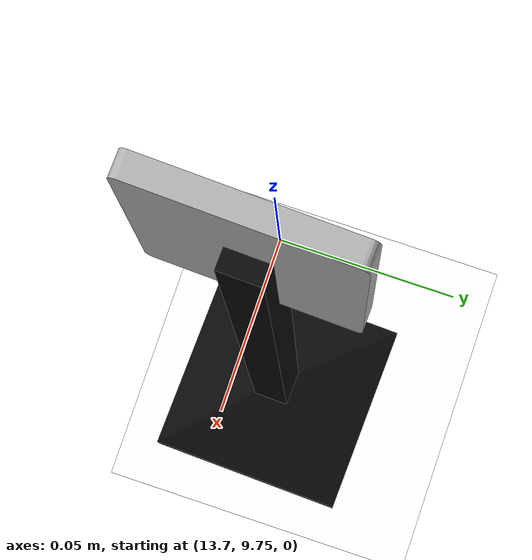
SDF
<sdf version="1.7">
 <world name="bfmc_official">
  <model name="track">
   <static>1</static>
   <link name="link">
    <collision name="collision">
     <geometry><plane><normal>0 0 1</normal><size>20.541 13.656</size></plane></geometry>
     <surface>
      <contact><collide_bitmask>65535</collide_bitmask></contact>
      <friction><ode><mu>1</mu><mu2>1</mu2></ode></friction>
     </surface>
    </collision>
    <visual name="visual">
     <geometry><plane><normal>0 0 1</normal><size>20.541 13.656</size></plane></geometry>
     <material>
      <ambient>1 1 1 1</ambient>
      <diffuse>1 1 1 1</diffuse>
      <specular>0 0 0 0</specular>
      <emissive>1 1 1 1</emissive>
      <script>
       <uri>model://track/materials/scripts</uri>
       <uri>model://track/materials/textures</uri>
       <name>BFMC_MATERIAL</name>
      </script>
     </material>
    </visual>
   </link>
   <pose>10.348 6.893 0 0 -0 0</pose>
  </model>
  <model name="LHIGH_Z_clone_clone">
   <static>1</static>
   <link name="sign_leg">
    <inertial>
     <mass>0.5</mass>
     <inertia>
      <ixx>0.166667</ixx>
      <ixy>0</ixy>
      <ixz>0</ixz>
      <iyy>0.166667</iyy>
      <iyz>0</iyz>
      <izz>0.166667</izz>
     </inertia>
     <pose>0 0 -0.078998 0 -0 0</pose>
    </inertial>
    <pose>0.002193 -0.000682 -0.07606 0 -0 0</pose>
    <self_collide>1</self_collide>
    <enable_wind>1</enable_wind>
    <visual name="visual">
     <geometry><mesh><uri>model://subassembly/meshes/sign_leg.dae</uri><scale>1 1 1</scale></mesh></geometry>
    </visual>
    <collision name="collision">
     <geometry><mesh><uri>model://subassembly/meshes/sign_leg.dae</uri><scale>1 1 1</scale></mesh></geometry>
     <surface>
      <friction>
       <ode><mu>0.46</mu><mu2>1</mu2><fdir1>0 0 0</fdir1><slip1>0</slip1><slip2>0</slip2></ode>
       <torsional>
        <coefficient>1</coefficient>
        <patch_radius>0</patch_radius>
        <surface_radius>0</surface_radius>
        <use_patch_radius>1</use_patch_radius>
        <ode><slip>0</slip></ode>
       </torsional>
      </friction>
      <bounce><restitution_coefficient>0</restitution_coefficient><threshold>1e+06</threshold></bounce>
      <contact>
       <collide_without_contact>0</collide_without_contact>
       <collide_without_contact_bitmask>1</collide_without_contact_bitmask>
       <collide_bitmask>1</collide_bitmask>
       <ode>
        <soft_cfm>0</soft_cfm>
        <soft_erp>0.2</soft_erp>
        <kp>1e+13</kp>
        <kd>1</kd>
        <max_vel>0.01</max_vel>
        <min_depth>0</min_depth>
       </ode>
       <bullet>
        <split_impulse>1</split_impulse>
        <split_impulse_penetration_threshold>-0.01</split_impulse_penetration_threshold>
        <soft_cfm>0</soft_cfm>
        <soft_erp>0.2</soft_erp>
        <kp>1e+13</kp>
        <kd>1</kd>
       </bullet>
      </contact>
     </surface>
    </collision>
   </link>
   <link name="rectangular_support">
    <inertial>
     <mass>0.022</mass>
     <inertia>
      <ixx>0.166667</ixx>
      <ixy>0</ixy>
      <ixz>0</ixz>
      <iyy>0.166667</iyy>
      <iyz>0</iyz>
      <izz>0.166667</izz>
     </inertia>
    </inertial>
    <pose>-0 0 0.09894 0 -0 3.14159</pose>
    <self_collide>1</self_collide>
    <enable_wind>1</enable_wind>
    <visual name="visual">
     <pose>-0.002 0 0 0 -0 0</pose>
     <geometry>
      <mesh><uri>model://leave_highway_sign/meshes/leave_highway_sign.dae</uri><scale>1 1 1</scale></mesh>
     </geometry>
     <material>
      <lighting>1</lighting>
      <script>
       <uri>model://leave_highway_sign/materials/scripts</uri>
       <uri>model://leave_highway_sign/materials/textures</uri>
       <name>LEAVE_HIGHWAY_SIGN</name>
      </script>
      <shader type="vertex"><normal_map>__default__</normal_map></shader>
      <ambient>0.3 0.3 0.3 1</ambient>
      <diffuse>0.7 0.7 0.7 1</diffuse>
      <specular>0.01 0.01 0.01 1</specular>
      <emissive>0 0 0 1</emissive>
     </material>
    </visual>
    <collision name="collision">
     <pose>-0.002 0 0 0 -0 0</pose>
     <geometry>
      <mesh><uri>model://leave_highway_sign/meshes/leave_highway_sign.dae</uri><scale>1 1 1</scale></mesh>
     </geometry>
     <surface>
      <friction>
       <ode><mu>0.46</mu><mu2>1</mu2><fdir1>0 0 0</fdir1><slip1>0</slip1><slip2>0</slip2></ode>
       <torsional>
        <coefficient>1</coefficient>
        <patch_radius>0</patch_radius>
        <surface_radius>0</surface_radius>
        <use_patch_radius>1</use_patch_radius>
        <ode><slip>0</slip></ode>
       </torsional>
      </friction>
      <bounce><restitution_coefficient>0</restitution_coefficient><threshold>1e+06</threshold></bounce>
      <contact>
       <collide_without_contact>0</collide_without_contact>
       <collide_without_contact_bitmask>1</collide_without_contact_bitmask>
       <collide_bitmask>1</collide_bitmask>
       <ode>
        <soft_cfm>0</soft_cfm>
        <soft_erp>0.2</soft_erp>
        <kp>1e+13</kp>
        <kd>1</kd>
        <max_vel>0.01</max_vel>
        <min_depth>0</min_depth>
       </ode>
       <bullet>
        <split_impulse>1</split_impulse>
        <split_impulse_penetration_threshold>-0.01</split_impulse_penetration_threshold>
        <soft_cfm>0</soft_cfm>
        <soft_erp>0.2</soft_erp>
        <kp>1e+13</kp>
        <kd>1</kd>
       </bullet>
      </contact>
     </surface>
    </collision>
   </link>
   <joint name="support_to_leg_joint" type="fixed">
    <parent>link_0</parent>
    <child>link_1</child>
    <physics>
     <ode><limit><cfm>0</cfm><erp>0.2</erp></limit><suspension><cfm>0</cfm><erp>0.2</erp></suspension></ode>
    </physics>
   </joint>
   <static>1</static>
   <pose>13.7417 9.76213 0.078998 0 -0 3.10645</pose>
  </model>
 </world>
</sdf>
